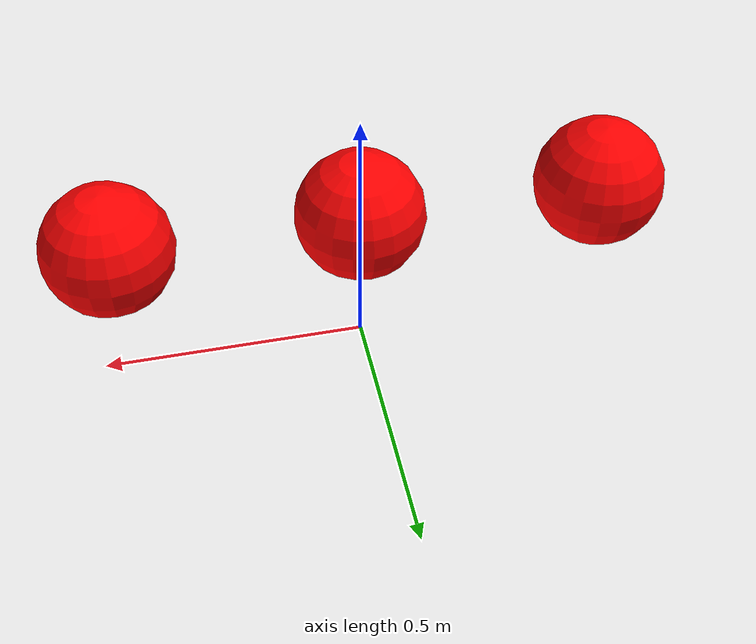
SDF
<?xml version="1.0"?>
<!-- 受控多目标正例：三个相互分离的红球。 -->
<sdf version="1.9"><model name="hw_suite_multi_separated"><static>true</static><link name="ball_left_link"><pose>-0.45 0 0.30 0 0 0</pose><visual name="visual"><geometry><sphere><radius>0.12</radius></sphere></geometry><material><ambient>1 0 0 1</ambient><diffuse>1 0 0 1</diffuse></material></visual></link><link name="ball_center_link"><pose>0 0 0.30 0 0 0</pose><visual name="visual"><geometry><sphere><radius>0.12</radius></sphere></geometry><material><ambient>1 0 0 1</ambient><diffuse>1 0 0 1</diffuse></material></visual></link><link name="ball_right_link"><pose>0.45 0 0.30 0 0 0</pose><visual name="visual"><geometry><sphere><radius>0.12</radius></sphere></geometry><material><ambient>1 0 0 1</ambient><diffuse>1 0 0 1</diffuse></material></visual></link></model></sdf>
